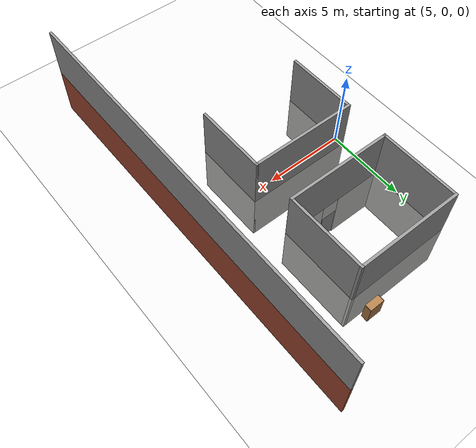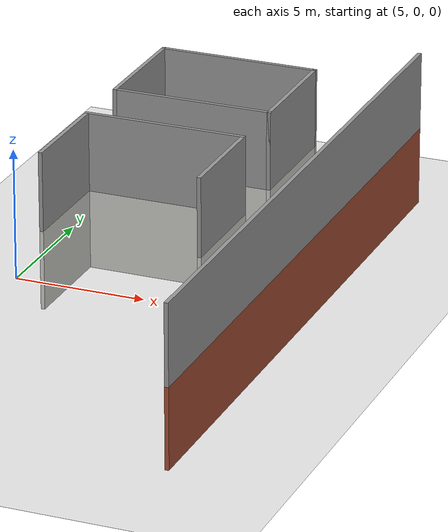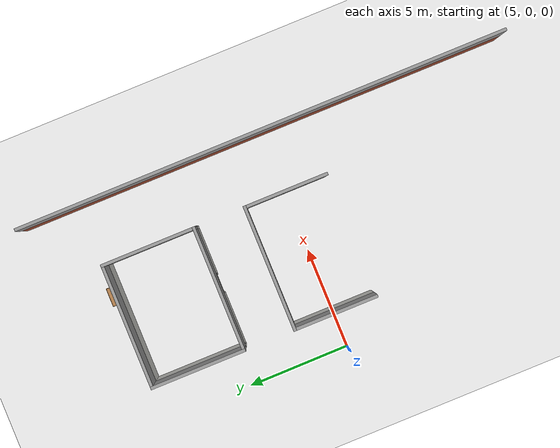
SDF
<sdf version="1.6">
 <world name="default">
  <model name="ground_plane">
   <static>1</static>
   <link name="link">
    <collision name="collision">
     <geometry><plane><normal>0 0 1</normal><size>100 100</size></plane></geometry>
     <surface><friction><ode><mu>100</mu><mu2>50</mu2></ode></friction></surface>
    </collision>
    <visual name="visual">
     <cast_shadows>0</cast_shadows>
     <geometry><plane><normal>0 0 1</normal><size>100 100</size></plane></geometry>
     <material>
      <script><uri>file://media/materials/scripts/gazebo.material</uri><name>Gazebo/White</name></script>
     </material>
    </visual>
   </link>
  </model>
  <model name="test_building">
   <link name="Wall_1">
    <collision name="Wall_1_Collision">
     <geometry><box><size>24.15 0.15 3</size></box></geometry>
     <pose>0 0 1.5 0 -0 0</pose>
    </collision>
    <visual name="Wall_1_Visual">
     <pose>0 0 1.5 0 -0 0</pose>
     <geometry><box><size>24.15 0.15 3</size></box></geometry>
     <material>
      <script><uri>file://media/materials/scripts/gazebo.material</uri><name>Gazebo/Bricks</name></script>
      <ambient>1 1 1 1</ambient>
     </material>
     <meta><layer>0</layer></meta>
    </visual>
    <pose>16 0 0 0 -0 1.5708</pose>
   </link>
   <link name="Wall_30">
    <collision name="Wall_30_Collision">
     <geometry><box><size>4.65 0.15 3</size></box></geometry>
     <pose>0 0 1.5 0 -0 0</pose>
    </collision>
    <visual name="Wall_30_Visual">
     <pose>0 0 1.5 0 -0 0</pose>
     <geometry><box><size>4.65 0.15 3</size></box></geometry>
     <material>
      <script><uri>file://media/materials/scripts/gazebo.material</uri><name>Gazebo/CeilingTiled</name></script>
      <ambient>1 1 1 1</ambient>
     </material>
     <meta><layer>0</layer></meta>
    </visual>
    <pose>7 6.75 0 0 -0 -1.5708</pose>
   </link>
   <link name="Wall_31">
    <pose>10 4.5 0 0 -0 0</pose>
    <visual name="Wall_31_Visual_0">
     <pose>-1.70802 0 1.5 0 -0 0</pose>
     <geometry><box><size>2.73397 0.15 3</size></box></geometry>
     <material>
      <script><uri>file://media/materials/scripts/gazebo.material</uri><name>Gazebo/CeilingTiled</name></script>
      <ambient>1 1 1 1</ambient>
     </material>
     <meta><layer>0</layer></meta>
    </visual>
    <collision name="Wall_31_Collision_0">
     <geometry><box><size>2.73397 0.15 3</size></box></geometry>
     <pose>-1.70802 0 1.5 0 -0 0</pose>
    </collision>
    <visual name="Wall_31_Visual_1">
     <pose>1.86698 0 1.5 0 -0 0</pose>
     <geometry><box><size>2.41603 0.15 3</size></box></geometry>
     <material>
      <script><uri>file://media/materials/scripts/gazebo.material</uri><name>Gazebo/CeilingTiled</name></script>
      <ambient>1 1 1 1</ambient>
     </material>
     <meta><layer>0</layer></meta>
    </visual>
    <collision name="Wall_31_Collision_1">
     <geometry><box><size>2.41603 0.15 3</size></box></geometry>
     <pose>1.86698 0 1.5 0 -0 0</pose>
    </collision>
    <visual name="Wall_31_Visual_2">
     <pose>0.15897 0 2.5 0 -0 0</pose>
     <geometry><box><size>1 0.15 1</size></box></geometry>
     <material>
      <script><uri>file://media/materials/scripts/gazebo.material</uri><name>Gazebo/CeilingTiled</name></script>
      <ambient>1 1 1 1</ambient>
     </material>
     <meta><layer>0</layer></meta>
    </visual>
    <collision name="Wall_31_Collision_2">
     <geometry><box><size>1 0.15 1</size></box></geometry>
     <pose>0.15897 0 2.5 0 -0 0</pose>
    </collision>
   </link>
   <link name="Wall_32">
    <collision name="Wall_32_Collision">
     <geometry><box><size>4.65 0.15 3</size></box></geometry>
     <pose>0 0 1.5 0 -0 0</pose>
    </collision>
    <visual name="Wall_32_Visual">
     <pose>0 0 1.5 0 -0 0</pose>
     <geometry><box><size>4.65 0.15 3</size></box></geometry>
     <material>
      <script><uri>file://media/materials/scripts/gazebo.material</uri><name>Gazebo/CeilingTiled</name></script>
      <ambient>1 1 1 1</ambient>
     </material>
     <meta><layer>0</layer></meta>
    </visual>
    <pose>13 6.75 0 0 -0 1.5708</pose>
   </link>
   <link name="Wall_33">
    <collision name="Wall_33_Collision">
     <geometry><box><size>6.15 0.15 3</size></box></geometry>
     <pose>0 0 1.5 0 -0 0</pose>
    </collision>
    <visual name="Wall_33_Visual">
     <pose>0 0 1.5 0 -0 0</pose>
     <geometry><box><size>6.15 0.15 3</size></box></geometry>
     <material>
      <script><uri>file://media/materials/scripts/gazebo.material</uri><name>Gazebo/CeilingTiled</name></script>
      <ambient>1 1 1 1</ambient>
     </material>
     <meta><layer>0</layer></meta>
    </visual>
    <pose>10 9 0 0 -0 3.14159</pose>
   </link>
   <link name="Wall_35">
    <collision name="Wall_35_Collision">
     <geometry><box><size>6.15 0.15 3</size></box></geometry>
     <pose>0 0 1.5 0 -0 0</pose>
    </collision>
    <visual name="Wall_35_Visual">
     <pose>0 0 1.5 0 -0 0</pose>
     <geometry><box><size>6.15 0.15 3</size></box></geometry>
     <material>
      <script><uri>file://media/materials/scripts/gazebo.material</uri><name>Gazebo/CeilingTiled</name></script>
      <ambient>1 1 1 1</ambient>
     </material>
     <meta><layer>0</layer></meta>
    </visual>
    <pose>10 2 0 0 -0 0</pose>
   </link>
   <link name="Wall_36">
    <collision name="Wall_36_Collision">
     <geometry><box><size>4.15 0.15 3</size></box></geometry>
     <pose>0 0 1.5 0 -0 0</pose>
    </collision>
    <visual name="Wall_36_Visual">
     <pose>0 0 1.5 0 -0 0</pose>
     <geometry><box><size>4.15 0.15 3</size></box></geometry>
     <material>
      <script><uri>file://media/materials/scripts/gazebo.material</uri><name>Gazebo/CeilingTiled</name></script>
      <ambient>1 1 1 1</ambient>
     </material>
     <meta><layer>0</layer></meta>
    </visual>
    <pose>13 0 0 0 -0 -1.5708</pose>
   </link>
   <link name="Wall_38">
    <collision name="Wall_38_Collision">
     <geometry><box><size>4.15 0.15 3</size></box></geometry>
     <pose>0 0 1.5 0 -0 0</pose>
    </collision>
    <visual name="Wall_38_Visual">
     <pose>0 0 1.5 0 -0 0</pose>
     <geometry><box><size>4.15 0.15 3</size></box></geometry>
     <material>
      <script><uri>file://media/materials/scripts/gazebo.material</uri><name>Gazebo/CeilingTiled</name></script>
      <ambient>1 1 1 1</ambient>
     </material>
     <meta><layer>0</layer></meta>
    </visual>
    <pose>7 0 0 0 -0 1.5708</pose>
   </link>
   <link name="Wall_48">
    <collision name="Wall_48_Collision">
     <geometry><box><size>24.15 0.15 3</size></box></geometry>
     <pose>0 0 1.5 0 -0 0</pose>
    </collision>
    <visual name="Wall_48_Visual">
     <pose>0 0 1.5 0 -0 0</pose>
     <geometry><box><size>24.15 0.15 3</size></box></geometry>
     <material>
      <script><uri>file://media/materials/scripts/gazebo.material</uri><name>Gazebo/Grey</name></script>
      <ambient>1 1 1 1</ambient>
     </material>
     <meta><layer>1</layer></meta>
    </visual>
    <pose>16 0 3 0 -0 1.5708</pose>
   </link>
   <link name="Wall_70">
    <collision name="Wall_70_Collision">
     <geometry><box><size>4.65 0.15 3</size></box></geometry>
     <pose>0 0 1.5 0 -0 0</pose>
    </collision>
    <visual name="Wall_70_Visual">
     <pose>0 0 1.5 0 -0 0</pose>
     <geometry><box><size>4.65 0.15 3</size></box></geometry>
     <material>
      <script><uri>file://media/materials/scripts/gazebo.material</uri><name>Gazebo/Grey</name></script>
      <ambient>1 1 1 1</ambient>
     </material>
     <meta><layer>1</layer></meta>
    </visual>
    <pose>7 6.75 3 0 -0 -1.5708</pose>
   </link>
   <link name="Wall_71">
    <collision name="Wall_71_Collision">
     <geometry><box><size>6.15 0.15 3</size></box></geometry>
     <pose>0 0 1.5 0 -0 0</pose>
    </collision>
    <visual name="Wall_71_Visual">
     <pose>0 0 1.5 0 -0 0</pose>
     <geometry><box><size>6.15 0.15 3</size></box></geometry>
     <material>
      <script><uri>file://media/materials/scripts/gazebo.material</uri><name>Gazebo/Grey</name></script>
      <ambient>1 1 1 1</ambient>
     </material>
     <meta><layer>1</layer></meta>
    </visual>
    <pose>10 4.5 3 0 -0 0</pose>
   </link>
   <link name="Wall_72">
    <collision name="Wall_72_Collision">
     <geometry><box><size>4.65 0.15 3</size></box></geometry>
     <pose>0 0 1.5 0 -0 0</pose>
    </collision>
    <visual name="Wall_72_Visual">
     <pose>0 0 1.5 0 -0 0</pose>
     <geometry><box><size>4.65 0.15 3</size></box></geometry>
     <material>
      <script><uri>file://media/materials/scripts/gazebo.material</uri><name>Gazebo/Grey</name></script>
      <ambient>1 1 1 1</ambient>
     </material>
     <meta><layer>1</layer></meta>
    </visual>
    <pose>13 6.75 3 0 -0 1.5708</pose>
   </link>
   <link name="Wall_73">
    <collision name="Wall_73_Collision">
     <geometry><box><size>6.15 0.15 3</size></box></geometry>
     <pose>0 0 1.5 0 -0 0</pose>
    </collision>
    <visual name="Wall_73_Visual">
     <pose>0 0 1.5 0 -0 0</pose>
     <geometry><box><size>6.15 0.15 3</size></box></geometry>
     <material>
      <script><uri>file://media/materials/scripts/gazebo.material</uri><name>Gazebo/Grey</name></script>
      <ambient>1 1 1 1</ambient>
     </material>
     <meta><layer>1</layer></meta>
    </visual>
    <pose>10 9 3 0 -0 3.14159</pose>
   </link>
   <link name="Wall_74">
    <collision name="Wall_74_Collision">
     <geometry><box><size>6.15 0.15 3</size></box></geometry>
     <pose>0 0 1.5 0 -0 0</pose>
    </collision>
    <visual name="Wall_74_Visual">
     <pose>0 0 1.5 0 -0 0</pose>
     <geometry><box><size>6.15 0.15 3</size></box></geometry>
     <material>
      <script><uri>file://media/materials/scripts/gazebo.material</uri><name>Gazebo/Grey</name></script>
      <ambient>1 1 1 1</ambient>
     </material>
     <meta><layer>1</layer></meta>
    </visual>
    <pose>10 2 3 0 -0 0</pose>
   </link>
   <link name="Wall_75">
    <collision name="Wall_75_Collision">
     <geometry><box><size>4.15 0.15 3</size></box></geometry>
     <pose>0 0 1.5 0 -0 0</pose>
    </collision>
    <visual name="Wall_75_Visual">
     <pose>0 0 1.5 0 -0 0</pose>
     <geometry><box><size>4.15 0.15 3</size></box></geometry>
     <material>
      <script><uri>file://media/materials/scripts/gazebo.material</uri><name>Gazebo/Grey</name></script>
      <ambient>1 1 1 1</ambient>
     </material>
     <meta><layer>1</layer></meta>
    </visual>
    <pose>13 0 3 0 -0 -1.5708</pose>
   </link>
   <link name="Wall_77">
    <collision name="Wall_77_Collision">
     <geometry><box><size>4.15 0.15 3</size></box></geometry>
     <pose>0 0 1.5 0 -0 0</pose>
    </collision>
    <visual name="Wall_77_Visual">
     <pose>0 0 1.5 0 -0 0</pose>
     <geometry><box><size>4.15 0.15 3</size></box></geometry>
     <material>
      <script><uri>file://media/materials/scripts/gazebo.material</uri><name>Gazebo/Grey</name></script>
      <ambient>1 1 1 1</ambient>
     </material>
     <meta><layer>1</layer></meta>
    </visual>
    <pose>7 0 3 0 -0 1.5708</pose>
   </link>
   <static>1</static>
  </model>
  <model name="door3_3">
   <model name="door2">
    <model name="door">
     <link name="link_0">
      <inertial>
       <mass>1</mass>
       <inertia>
        <ixx>0.166667</ixx>
        <ixy>0</ixy>
        <ixz>0</ixz>
        <iyy>0.166667</iyy>
        <iyz>0</iyz>
        <izz>0.166667</izz>
       </inertia>
      </inertial>
      <pose>0.77106 0.045416 0.5 0 -0 0</pose>
      <visual name="visual">
       <geometry><box><size>0.9 0.05 2</size></box></geometry>
       <material>
        <lighting>1</lighting>
        <script><uri>file://media/materials/scripts/gazebo.material</uri><name>Gazebo/Grey</name></script>
        <shader type="pixel"><normal_map>__default__</normal_map></shader>
        <ambient>0.3 0.3 0.3 1</ambient>
        <diffuse>0.7 0.7 0.7 1</diffuse>
        <specular>0.01 0.01 0.01 1</specular>
        <emissive>0 0 0 1</emissive>
       </material>
      </visual>
      <collision name="collision">
       <geometry><box><size>0.9 0.1 2</size></box></geometry>
       <surface>
        <friction>
         <ode><mu>1</mu><mu2>1</mu2><fdir1>0 0 0</fdir1><slip1>0</slip1><slip2>0</slip2></ode>
         <torsional>
          <coefficient>1</coefficient>
          <patch_radius>0</patch_radius>
          <surface_radius>0</surface_radius>
          <use_patch_radius>1</use_patch_radius>
          <ode><slip>0</slip></ode>
         </torsional>
        </friction>
        <bounce><restitution_coefficient>0</restitution_coefficient><threshold>1e+06</threshold></bounce>
        <contact>
         <collide_without_contact>0</collide_without_contact>
         <collide_without_contact_bitmask>1</collide_without_contact_bitmask>
         <collide_bitmask>1</collide_bitmask>
         <ode>
          <soft_cfm>0</soft_cfm>
          <soft_erp>0.2</soft_erp>
          <kp>1e+13</kp>
          <kd>1</kd>
          <max_vel>0.01</max_vel>
          <min_depth>0</min_depth>
         </ode>
         <bullet>
          <split_impulse>1</split_impulse>
          <split_impulse_penetration_threshold>-0.01</split_impulse_penetration_threshold>
          <soft_cfm>0</soft_cfm>
          <soft_erp>0.2</soft_erp>
          <kp>1e+13</kp>
          <kd>1</kd>
         </bullet>
        </contact>
       </surface>
      </collision>
     </link>
     <link name="link_1">
      <inertial>
       <mass>10</mass>
       <inertia>
        <ixx>3.34167</ixx>
        <ixy>0</ixy>
        <ixz>0</ixz>
        <iyy>3.34167</iyy>
        <iyz>0</iyz>
        <izz>0.0166667</izz>
       </inertia>
      </inertial>
      <pose>1.27106 0.020416 0.5 0 -0 0</pose>
      <visual name="visual">
       <geometry><box><size>0.1 0.1 2</size></box></geometry>
       <material>
        <lighting>1</lighting>
        <script><uri>file://media/materials/scripts/gazebo.material</uri><name>Gazebo/Grey</name></script>
        <shader type="pixel"><normal_map>__default__</normal_map></shader>
        <ambient>0.3 0.3 0.3 1</ambient>
        <diffuse>0.7 0.7 0.7 1</diffuse>
        <specular>0.01 0.01 0.01 1</specular>
        <emissive>0 0 0 1</emissive>
       </material>
      </visual>
      <collision name="collision">
       <geometry><box><size>0.1 0.1 2</size></box></geometry>
       <surface>
        <friction>
         <ode><mu>1</mu><mu2>1</mu2><fdir1>0 0 0</fdir1><slip1>0</slip1><slip2>0</slip2></ode>
         <torsional>
          <coefficient>1</coefficient>
          <patch_radius>0</patch_radius>
          <surface_radius>0</surface_radius>
          <use_patch_radius>1</use_patch_radius>
          <ode><slip>0</slip></ode>
         </torsional>
        </friction>
        <bounce><restitution_coefficient>0</restitution_coefficient><threshold>1e+06</threshold></bounce>
        <contact>
         <collide_without_contact>0</collide_without_contact>
         <collide_without_contact_bitmask>1</collide_without_contact_bitmask>
         <collide_bitmask>1</collide_bitmask>
         <ode>
          <soft_cfm>0</soft_cfm>
          <soft_erp>0.2</soft_erp>
          <kp>1e+13</kp>
          <kd>1</kd>
          <max_vel>0.01</max_vel>
          <min_depth>0</min_depth>
         </ode>
         <bullet>
          <split_impulse>1</split_impulse>
          <split_impulse_penetration_threshold>-0.01</split_impulse_penetration_threshold>
          <soft_cfm>0</soft_cfm>
          <soft_erp>0.2</soft_erp>
          <kp>1e+13</kp>
          <kd>1</kd>
         </bullet>
        </contact>
       </surface>
      </collision>
     </link>
     <joint name="link_1_JOINT_0" type="revolute">
      <parent>link_1</parent>
      <child>link_0</child>
      <axis>
       <xyz>0 0 1</xyz>
       <use_parent_model_frame>0</use_parent_model_frame>
       <limit>
        <lower>-1.79769e+308</lower>
        <upper>1.79769e+308</upper>
        <effort>-1</effort>
        <velocity>-1</velocity>
       </limit>
       <dynamics>
        <spring_reference>0</spring_reference>
        <spring_stiffness>0</spring_stiffness>
        <damping>0</damping>
       </dynamics>
      </axis>
      <physics>
       <ode><limit><cfm>0</cfm><erp>0.2</erp></limit><suspension><cfm>0</cfm><erp>0.2</erp></suspension></ode>
      </physics>
     </joint>
     <static>0</static>
     <pose>0 4e-06 0 0 -0 0</pose>
    </model>
    <joint name="link_0_JOINT_1" type="fixed">
     <parent>door::link_0</parent>
     <child>door::link_1</child>
     <physics>
      <ode><limit><cfm>0</cfm><erp>0.2</erp></limit><suspension><cfm>0</cfm><erp>0.2</erp></suspension></ode>
     </physics>
    </joint>
    <static>0</static>
    <pose>5e-06 -0 0.47855 0 -0 0</pose>
   </model>
   <joint name="link_1_JOINT_2" type="fixed">
    <parent>door2::door::link_1</parent>
    <child>door2::door::link_0</child>
    <physics>
     <ode><limit><cfm>0</cfm><erp>0.2</erp></limit><suspension><cfm>0</cfm><erp>0.2</erp></suspension></ode>
    </physics>
   </joint>
   <static>0</static>
   <pose>9.32889 4.45955 0 0 -0 0</pose>
  </model>
  <model name="bookshelf_0">
   <static>1</static>
   <link name="link">
    <inertial><mass>1</mass></inertial>
    <collision name="back">
     <pose>0 0.005 0.6 0 -0 0</pose>
     <geometry><box><size>0.9 0.01 1.2</size></box></geometry>
    </collision>
    <visual name="visual1">
     <pose>0 0.005 0.6 0 -0 0</pose>
     <geometry><box><size>0.9 0.01 1.2</size></box></geometry>
     <material>
      <script><uri>file://media/materials/scripts/gazebo.material</uri><name>Gazebo/Wood</name></script>
     </material>
    </visual>
    <collision name="left_side">
     <pose>0.45 -0.195 0.6 0 -0 0</pose>
     <geometry><box><size>0.02 0.4 1.2</size></box></geometry>
    </collision>
    <visual name="visual2">
     <pose>0.45 -0.195 0.6 0 -0 0</pose>
     <geometry><box><size>0.02 0.4 1.2</size></box></geometry>
     <material>
      <script><uri>file://media/materials/scripts/gazebo.material</uri><name>Gazebo/Wood</name></script>
     </material>
    </visual>
    <collision name="right_side">
     <pose>-0.45 -0.195 0.6 0 -0 0</pose>
     <geometry><box><size>0.02 0.4 1.2</size></box></geometry>
    </collision>
    <visual name="visual3">
     <pose>-0.45 -0.195 0.6 0 -0 0</pose>
     <geometry><box><size>0.02 0.4 1.2</size></box></geometry>
     <material>
      <script><uri>file://media/materials/scripts/gazebo.material</uri><name>Gazebo/Wood</name></script>
     </material>
    </visual>
    <collision name="bottom">
     <pose>0 -0.195 0.03 0 -0 0</pose>
     <geometry><box><size>0.88 0.4 0.06</size></box></geometry>
    </collision>
    <visual name="visual4">
     <pose>0 -0.195 0.03 0 -0 0</pose>
     <geometry><box><size>0.88 0.4 0.06</size></box></geometry>
     <material>
      <script><uri>file://media/materials/scripts/gazebo.material</uri><name>Gazebo/Wood</name></script>
     </material>
    </visual>
    <collision name="top">
     <pose>0 -0.195 1.19 0 -0 0</pose>
     <geometry><box><size>0.88 0.4 0.02</size></box></geometry>
    </collision>
    <visual name="visual5">
     <pose>0 -0.195 1.19 0 -0 0</pose>
     <geometry><box><size>0.88 0.4 0.02</size></box></geometry>
     <material>
      <script><uri>file://media/materials/scripts/gazebo.material</uri><name>Gazebo/Wood</name></script>
     </material>
    </visual>
    <collision name="low_shelf">
     <pose>0 -0.195 0.43 0 -0 0</pose>
     <geometry><box><size>0.88 0.4 0.02</size></box></geometry>
    </collision>
    <visual name="visual6">
     <pose>0 -0.195 0.43 0 -0 0</pose>
     <geometry><box><size>0.88 0.4 0.02</size></box></geometry>
     <material>
      <script><uri>file://media/materials/scripts/gazebo.material</uri><name>Gazebo/Wood</name></script>
     </material>
    </visual>
    <collision name="high_shelf">
     <pose>0 -0.195 0.8 0 -0 0</pose>
     <geometry><box><size>0.88 0.4 0.02</size></box></geometry>
    </collision>
    <visual name="visual7">
     <pose>0 -0.195 0.8 0 -0 0</pose>
     <geometry><box><size>0.88 0.4 0.02</size></box></geometry>
     <material>
      <script><uri>file://media/materials/scripts/gazebo.material</uri><name>Gazebo/Wood</name></script>
     </material>
    </visual>
   </link>
   <pose>11.4746 9.59547 0 0 -0 0</pose>
  </model>
 </world>
</sdf>
